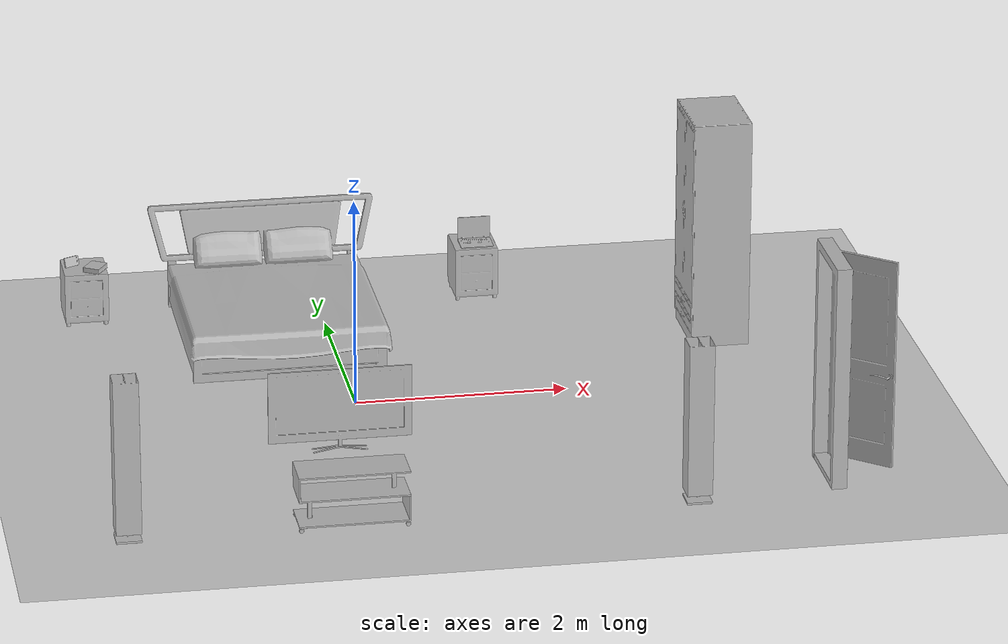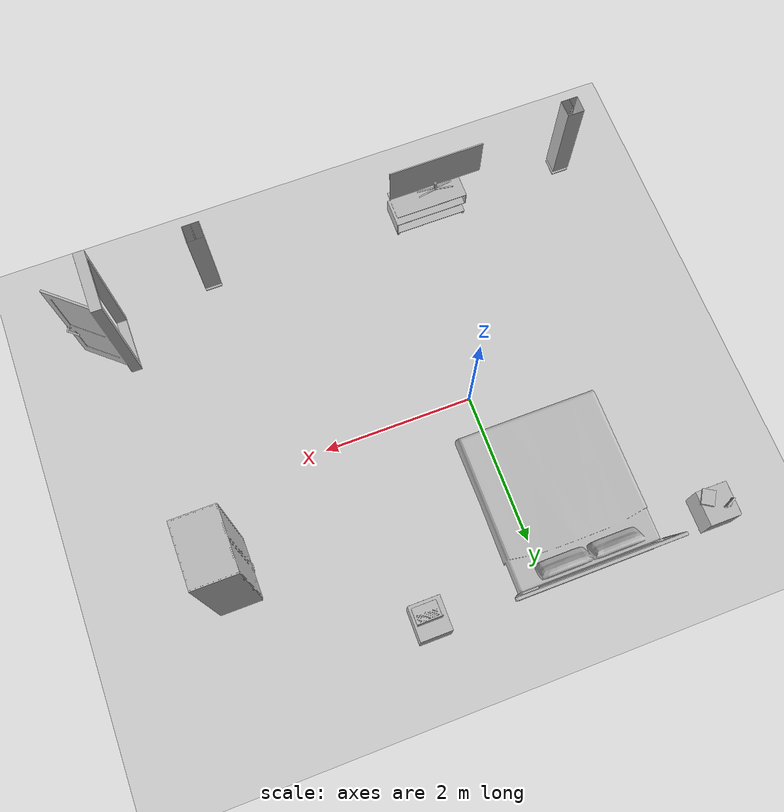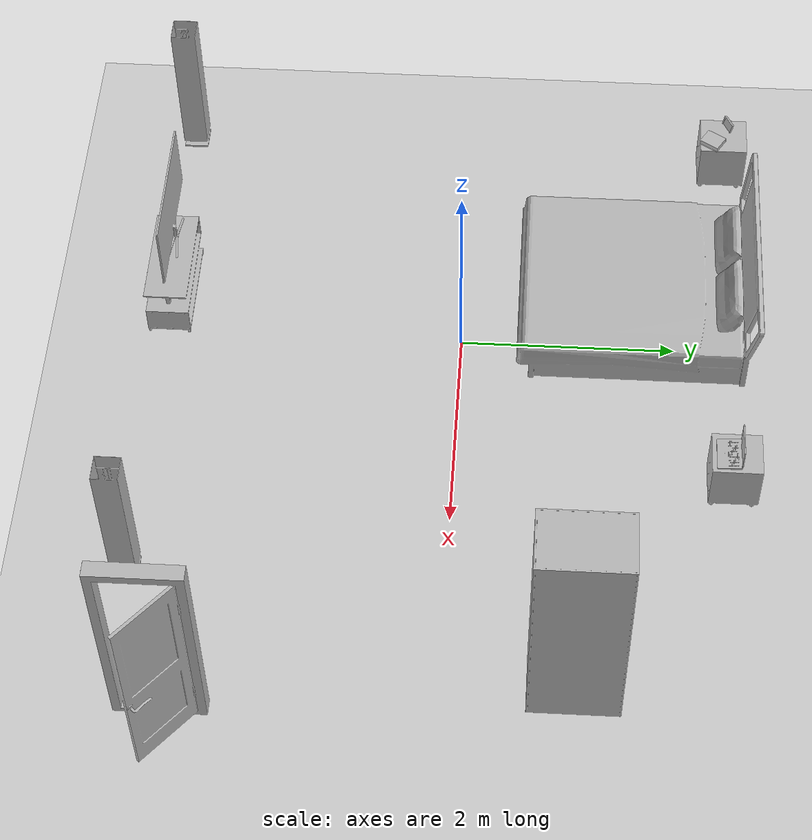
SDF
<sdf version="1.4">
 <world name="default">
  <light name="sun" type="directional">
   <pose>0 0 10 0 -0 0</pose>
   <diffuse>0.8 0.8 0.8 1</diffuse>
   <specular>0.2 0.2 0.2 1</specular>
   <attenuation>
    <range>1000</range>
    <constant>0.9</constant>
    <linear>0.01</linear>
    <quadratic>0.001</quadratic>
   </attenuation>
   <direction>-0.5 0.1 -0.9</direction>
  </light>
  <model name="ground_plane">
   <static>1</static>
   <link name="link">
    <collision name="collision">
     <geometry><plane><normal>0 0 1</normal><size>100 100</size></plane></geometry>
     <surface><friction><ode><mu>100</mu><mu2>50</mu2></ode></friction></surface>
    </collision>
    <visual name="visual">
     <cast_shadows>0</cast_shadows>
     <geometry><plane><normal>0 0 1</normal><size>100 100</size></plane></geometry>
     <material>
      <script><uri>file://media/materials/scripts/gazebo.material</uri><name>Gazebo/Grey</name></script>
     </material>
    </visual>
    <velocity_decay><linear>0</linear><angular>0</angular></velocity_decay>
   </link>
  </model>
  <physics type="ode">
   <max_step_size>0.001</max_step_size>
   <real_time_factor>1</real_time_factor>
   <real_time_update_rate>1000</real_time_update_rate>
   <gravity>0 0 -9.8</gravity>
  </physics>
  <scene><ambient>0.4 0.4 0.4 1</ambient><background>0.7 0.7 0.7 1</background><shadows>1</shadows></scene>
  <spherical_coordinates>
   <surface_model>EARTH_WGS84</surface_model>
   <latitude_deg>0</latitude_deg>
   <longitude_deg>0</longitude_deg>
   <elevation>0</elevation>
   <heading_deg>0</heading_deg>
  </spherical_coordinates>
  <model name="204_0">
   <pose>-0.520613 1.59215 0.03 0 0 -1.5708</pose>
   <static>1</static>
   <link name="link">
    <collision name="collision"><geometry><box><size>2.19636 2.19 2</size></box></geometry></collision>
    <visual name="visual"><geometry><mesh><uri>model://204/204.dae</uri></mesh></geometry></visual>
    <velocity_decay><linear>0</linear><angular>0</angular></velocity_decay>
   </link>
  </model>
  <model name="563_0">
   <pose>-0.448617 -2.75445 0.03 0 -0 1.5708</pose>
   <static>1</static>
   <link name="link">
    <collision name="collision"><geometry><box><size>0.400208 1.00008 2</size></box></geometry></collision>
    <visual name="visual"><geometry><mesh><uri>model://563/563.dae</uri></mesh></geometry></visual>
    <velocity_decay><linear>0</linear><angular>0</angular></velocity_decay>
   </link>
  </model>
  <model name="114_0">
   <pose>-0.544615 -2.71045 0.712885 0 -0 1.5708</pose>
   <static>1</static>
   <link name="link">
    <collision name="collision"><geometry><box><size>0.09995 1.28 2</size></box></geometry></collision>
    <visual name="visual"><geometry><mesh><uri>model://114/114.dae</uri></mesh></geometry></visual>
    <velocity_decay><linear>0</linear><angular>0</angular></velocity_decay>
   </link>
  </model>
  <model name="318_0">
   <pose>-2.27262 2.45614 0.03 0 0 -1.5708</pose>
   <static>1</static>
   <link name="link">
    <collision name="collision"><geometry><box><size>0.465592 0.42 2</size></box></geometry></collision>
    <visual name="visual"><geometry><mesh><uri>model://318/318.dae</uri></mesh></geometry></visual>
    <velocity_decay><linear>0</linear><angular>0</angular></velocity_decay>
   </link>
  </model>
  <model name="383_0">
   <pose>3.61958 1.13446 0.03 0 0 -3.14159</pose>
   <static>1</static>
   <link name="link">
    <collision name="collision"><geometry><box><size>0.579962 0.8 2</size></box></geometry></collision>
    <visual name="visual"><geometry><mesh><uri>model://383/383.dae</uri></mesh></geometry></visual>
    <velocity_decay><linear>0</linear><angular>0</angular></velocity_decay>
   </link>
  </model>
  <model name="122_0">
   <pose>3.99256 -2.32154 0 0 0 -3.14159</pose>
   <static>1</static>
   <link name="link">
    <collision name="collision"><geometry><box><size>0.650001 0.8 2</size></box></geometry></collision>
    <visual name="visual"><geometry><mesh><uri>model://122/122.dae</uri></mesh></geometry></visual>
    <velocity_decay><linear>0</linear><angular>0</angular></velocity_decay>
   </link>
  </model>
  <model name="318_1">
   <pose>1.53979 2.50311 0.03 0 0 -1.5708</pose>
   <static>1</static>
   <link name="link">
    <collision name="collision"><geometry><box><size>0.465592 0.42 2</size></box></geometry></collision>
    <visual name="visual"><geometry><mesh><uri>model://318/318.dae</uri></mesh></geometry></visual>
    <velocity_decay><linear>0</linear><angular>0</angular></velocity_decay>
   </link>
  </model>
  <model name="257_0">
   <pose>-2.38678 2.50373 0.53 0 0 -1.10852</pose>
   <static>1</static>
   <link name="link">
    <collision name="collision"><geometry><box><size>0.084453 0.15 2</size></box></geometry></collision>
    <visual name="visual"><geometry><mesh><uri>model://257/257.dae</uri></mesh></geometry></visual>
    <velocity_decay><linear>0</linear><angular>0</angular></velocity_decay>
   </link>
  </model>
  <model name="148_0">
   <pose>-2.17378 2.35867 0.561133 0 0 -2.12139</pose>
   <static>1</static>
   <link name="link">
    <collision name="collision"><geometry><box><size>0.2 0.17 0</size></box></geometry></collision>
    <visual name="visual"><geometry><mesh><uri>model://148/148.dae</uri></mesh></geometry></visual>
    <velocity_decay><linear>0</linear><angular>0</angular></velocity_decay>
   </link>
  </model>
  <model name="120_0">
   <pose>1.55539 2.4372 0.559325 0 0 -1.5708</pose>
   <static>1</static>
   <link name="link">
    <collision name="collision"><geometry><box><size>0.225973 0.32 2</size></box></geometry></collision>
    <visual name="visual"><geometry><mesh><uri>model://120/120.dae</uri></mesh></geometry></visual>
    <velocity_decay><linear>0</linear><angular>0</angular></velocity_decay>
   </link>
  </model>
  <model name="517_0">
   <pose>-2.45261 -2.79308 0.03 0 -0 0</pose>
   <static>1</static>
   <link name="link">
    <collision name="collision"><geometry><box><size>0.23 0.23 2</size></box></geometry></collision>
    <visual name="visual"><geometry><mesh><uri>model://517/517.dae</uri></mesh></geometry></visual>
    <velocity_decay><linear>0</linear><angular>0</angular></velocity_decay>
   </link>
  </model>
  <model name="517_1">
   <pose>2.67139 -2.79759 0.03 0 -0 0</pose>
   <static>1</static>
   <link name="link">
    <collision name="collision"><geometry><box><size>0.23 0.23 2</size></box></geometry></collision>
    <visual name="visual"><geometry><mesh><uri>model://517/517.dae</uri></mesh></geometry></visual>
    <velocity_decay><linear>0</linear><angular>0</angular></velocity_decay>
   </link>
  </model>
 </world>
</sdf>
